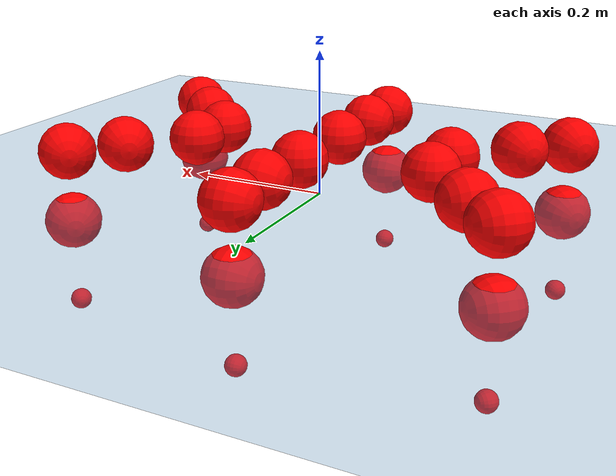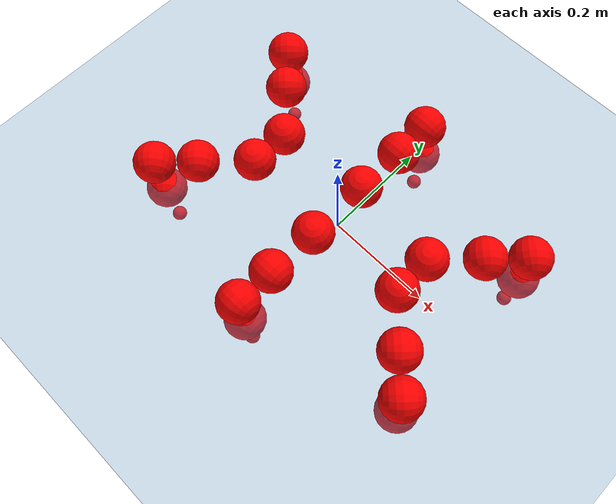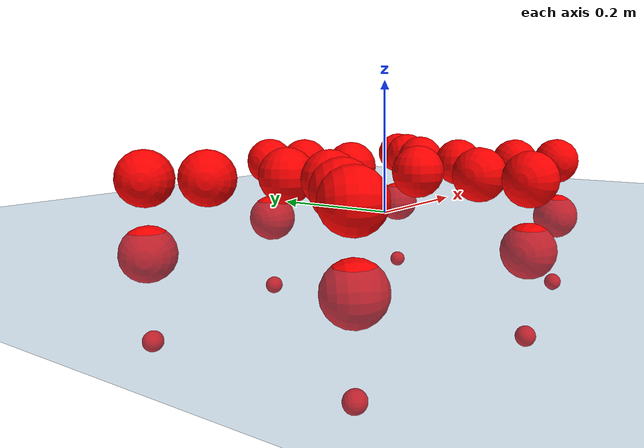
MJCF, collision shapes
<mujoco model="Golem">
  <compiler angle="radian" assetdir="assets" balanceinertia="true" inertiafromgeom="false"/>

  <option timestep="0.005" density="1.2" viscosity="2e-05"/>

  <size nkey="1"/>

  <visual>
    <quality shadowsize="8192"/>
    <map shadowclip="0.5"/>
  </visual>

  <default>
    <default class="/">
      <joint armature="0.01" damping="0.01" frictionloss="0.01"/>
      <geom contype="0" conaffinity="0" group="1" solref="-1000 -80"/>
      <site size="0.01 0.005 0.005" group="5"/>
      <general forcelimited="true" biastype="affine" gainprm="25" biasprm="0 -25 -0.5"/>
      <default class="visual">
        <geom type="mesh" group="2"/>
      </default>
      <default class="collision">
        <geom group="3"/>
      </default>
      <default class="foot">
        <geom size="0.01 0 0" condim="6" group="4" priority="1" solimp="0.015 1 0.01"/>
      </default>
      <default class="reward_collision_sphere">
        <geom group="5" rgba="1 0 0 1"/>
      </default>
    </default>
  </default>

  <asset>
    <texture type="skybox" colorspace="auto" name="//unnamed_texture_0" builtin="gradient" rgb1="0.95 0.95 0.95" rgb2="0.95 0.95 0.95" width="100" height="600"/>
    <texture type="2d" colorspace="auto" name="texplane" builtin="checker" rgb1="0.345 0.575 0.748" rgb2="0.345 0.575 0.748" markrgb="1 1 1" width="512" height="512"/>
    <material name="MatPlane" class="/" texture="texplane" texuniform="true" texrepeat="2 2" specular="0.9"/>
    <mesh name="body" class="/" file="body.stl" scale="0.001 0.001 0.001"/>
    <mesh name="coxa" class="/" file="coxa.stl" scale="0.001 0.001 0.001"/>
    <mesh name="femur" class="/" file="femur.stl" scale="0.001 0.001 0.001"/>
    <mesh name="tibia" class="/" file="tibia.stl" scale="0.001 0.001 0.001"/>
    <mesh name="tarsus" class="/" file="tarsus.stl" scale="0.001 0.001 0.001"/>
  </asset>

  <worldbody>
    <geom name="floor" class="/" size="100 100 0.125" type="plane" group="0" material="MatPlane"/>
    <light name="toplight_shadow" class="/" pos="0 0 5" dir="0.0990148 0.0990148 -0.990148" type="directional" ambient="0.04 0.04 0.04" diffuse="0.55 0.55 0.55" specular="0.12 0.12 0.12"/>
    <light name="toplight_fill" class="/" pos="0 0 5" dir="0.0990148 0.0990148 -0.990148" type="directional" castshadow="false" ambient="0.04 0.04 0.04" diffuse="0.3 0.3 0.3" specular="0.08 0.08 0.08"/>
    <body name="trunk" pos="-0.000856816 0.00206235 0.0002426" quat="1 -3.48196e-05 -8.23416e-06 1.04113e-05">
      <inertial pos="0.000853473 -8.48621e-05 -0.00539063" quat="0.999997 0.00110257 0.00185346 -0.000955086" mass="3.44947" diaginertia="0.0178105 0.0019949 0.0128286"/>
      <joint name="//unnamed_joint_0" type="free"/>
      <geom name="//unnamed_geom_1" class="/" pos="0 0 0.0673923" quat="1 0 0 0" type="mesh" rgba="0.9 0.9 0.9 1" mesh="body"/>
      <site name="imu" class="/" pos="0.144618 -0.00286658 0.104179" size="0.00964052"/>
      <camera name="track" class="/" pos="0 -1.44136 0" quat="0.707107 0.707107 0 0" mode="trackcom"/>
      <camera name="ego_camera" class="/" pos="0.145401 0 0.105301" quat="-0.5 -0.5 0.5 0.5"/>
      <body name="coxa_RR" pos="-0.198985 -0.0589147 0.0700141" quat="0.38323 -0.000348343 0.000453735 -0.923653">
        <inertial pos="5.90311e-05 -0.00235851 0.00284036" quat="1 5.35676e-05 4.45658e-05 0.000983067" mass="0.182626" diaginertia="0.0175615 0.00196641 0.0129169"/>
        <joint name="coxa_joint_RR" class="/" pos="0 0 0" axis="-9.72163e-05 -0.00442554 -0.99999" range="-3.11364 3.1388" armature="0.00976037" damping="0.0108776" frictionloss="0.00974057"/>
        <geom name="//unnamed_geom_2" class="/" type="mesh" rgba="0.2 0.2 0.2 1" mesh="coxa"/>
        <geom name="//unnamed_geom_3" class="reward_collision_sphere" size="0.0385621" pos="-0.0335542 0 0"/>
        <body name="femur_RR" pos="0.0689791 0.000725005 -0.00118532" quat="0.499556 -0.500482 0.500244 0.499717">
          <inertial pos="-0.00149598 0.000365705 0.000875386" quat="1 0.000450859 6.0139e-05 -0.000300305" mass="0.180529" diaginertia="0.0176571 0.00197308 0.0131082"/>
          <joint name="femur_joint_RR" class="/" pos="0 0 0" axis="-0.00206225 -0.00245106 -0.999995" range="-3.15232 3.14129" armature="0.00919903" damping="0.00538875" frictionloss="0.00971507"/>
          <geom name="//unnamed_geom_4" class="/" type="mesh" rgba="0.9 0.9 0.9 1" mesh="femur"/>
          <geom name="//unnamed_geom_5" class="reward_collision_sphere" size="0.0385621"/>
          <body name="tibia_RR" pos="0.00115704 -0.0786672 0.000561435" quat="4.58025e-05 1 3.61692e-05 -4.37843e-06">
            <inertial pos="-0.000519493 1.53267e-05 -0.000926422" quat="1 -2.04732e-05 7.71887e-05 7.58688e-05" mass="0.175949" diaginertia="0.0174558 0.00197336 0.0133174"/>
            <joint name="tibia_joint_RR" class="/" pos="0 0 0" axis="0.0046917 0.00202706 0.999987" range="-3.13093 3.0888" armature="0.00993041" damping="0.0120308" frictionloss="0.00949504"/>
            <geom name="//unnamed_geom_6" class="/" type="mesh" rgba="0.2 0.2 0.2 1" mesh="tibia"/>
            <geom name="//unnamed_geom_7" class="reward_collision_sphere" size="0.0385621"/>
            <body name="tarsus_RR" pos="0.0985143 -0.00154282 -0.00110795" quat="1 -1.95915e-05 -2.20598e-05 -2.32347e-05">
              <inertial pos="0.0699342 0.00311271 -0.00173205" quat="0.498387 0.501066 0.500421 0.500122" mass="0.184665" diaginertia="0.0179165 0.00203639 0.013322"/>
              <joint name="tarsus_joint_RR" class="/" pos="0 0 0" axis="-0.00413273 -0.00129864 0.999991" range="-3.09119 3.13141" armature="0.00918357" damping="0.0391269" frictionloss="0.00954252"/>
              <geom name="//unnamed_geom_8" class="/" type="mesh" rgba="0.9 0.9 0.9 1" mesh="tarsus"/>
              <geom name="foot_1" class="foot" size="0.00926143" pos="0.125269 0 0" quat="0 -0.707107 0 0.707107"/>
              <geom name="//unnamed_geom_10" class="reward_collision_sphere" size="0.0385621"/>
              <geom name="//unnamed_geom_11" class="reward_collision_sphere" size="0.0144608" pos="0.120236 0 0"/>
              <site name="foot_1" class="foot" pos="0.125269 0 0" quat="0 -0.707107 0 0.707107" size="0.00964052"/>
            </body>
          </body>
        </body>
      </body>
      <body name="coxa_RM" pos="-0.000316261 -0.0953611 0.0661827" quat="0.707018 -8.79186e-05 5.63719e-05 -0.707196">
        <inertial pos="0.000255785 -0.000303027 -0.000744907" quat="0.999998 0.00152052 0.000389071 0.000795733" mass="0.175611" diaginertia="0.017285 0.00190908 0.0127803"/>
        <joint name="coxa_joint_RM" class="/" pos="0 0 0" axis="0.00115616 -0.00402505 -0.999991" range="-3.12336 3.15878" armature="0.00981387" damping="0.00628655" frictionloss="0.00844564"/>
        <geom name="//unnamed_geom_12" class="/" type="mesh" rgba="0.2 0.2 0.2 1" mesh="coxa"/>
        <geom name="//unnamed_geom_13" class="reward_collision_sphere" size="0.0385621" pos="-0.0335542 0 0"/>
        <body name="femur_RM" pos="0.0662825 -0.00045652 0.00135139" quat="0.499928 -0.50017 0.500061 0.499841">
          <inertial pos="0.000315213 -0.000418018 0.00124118" quat="0.999989 0.00401128 -0.00137176 -0.00185629" mass="0.177548" diaginertia="0.0169901 0.00196213 0.0129442"/>
          <joint name="femur_joint_RM" class="/" pos="0 0 0" axis="-0.00486308 0.00167039 -0.999987" range="-3.15811 3.14224" armature="0.00952768" damping="0" frictionloss="0.00942984"/>
          <geom name="//unnamed_geom_14" class="/" type="mesh" rgba="0.9 0.9 0.9 1" mesh="femur"/>
          <geom name="//unnamed_geom_15" class="reward_collision_sphere" size="0.0385621"/>
          <body name="tibia_RM" pos="0.00181245 -0.0751314 -0.000846952" quat="9.23942e-05 1 0.000172138 4.23688e-06">
            <inertial pos="-0.00240734 -0.00258517 -0.000979444" quat="0.999928 -0.0111816 -0.00293112 0.00333692" mass="0.178491" diaginertia="0.0173912 0.00193927 0.0125483"/>
            <joint name="tibia_joint_RM" class="/" pos="0 0 0" axis="-0.000787664 -0.000540289 1" range="-3.12824 3.13036" armature="0.00951287" damping="0.017844" frictionloss="0.00971346"/>
            <geom name="//unnamed_geom_16" class="/" type="mesh" rgba="0.2 0.2 0.2 1" mesh="tibia"/>
            <geom name="//unnamed_geom_17" class="reward_collision_sphere" size="0.0385621"/>
            <body name="tarsus_RM" pos="0.0974128 7.56517e-05 -0.000490865" quat="1 -0.000315289 4.66935e-05 -0.000247579">
              <inertial pos="0.0667206 0.000773089 0.000692393" quat="0.50114 0.500314 0.49935 0.499193" mass="0.180511" diaginertia="0.017465 0.00197085 0.0130115"/>
              <joint name="tarsus_joint_RM" class="/" pos="0 0 0" axis="0.000851006 0.00279001 0.999996" range="-3.13732 3.13034" armature="0.00853337" damping="0.00204505" frictionloss="0.00971788"/>
              <geom name="//unnamed_geom_18" class="/" type="mesh" rgba="0.9 0.9 0.9 1" mesh="tarsus"/>
              <geom name="foot_2" class="foot" size="0.00926033" pos="0.125269 0 0" quat="0 -0.707107 0 0.707107"/>
              <geom name="//unnamed_geom_20" class="reward_collision_sphere" size="0.0385621"/>
              <geom name="//unnamed_geom_21" class="reward_collision_sphere" size="0.0144608" pos="0.120236 0 0"/>
              <site name="foot_2" class="foot" pos="0.125269 0 0" quat="0 -0.707107 0 0.707107" size="0.00964052"/>
            </body>
          </body>
        </body>
      </body>
      <body name="coxa_RF" pos="0.198226 -0.0613378 0.0664199" quat="0.923895 0.00024204 -0.000481397 -0.382646">
        <inertial pos="0.00202659 -0.000153762 0.000474532" quat="1 0.000174965 0.000196731 -8.86988e-05" mass="0.179545" diaginertia="0.0179957 0.00192464 0.0126203"/>
        <joint name="coxa_joint_RF" class="/" pos="0 0 0" axis="0.000625343 -0.00345947 -0.999994" range="-3.14554 3.13558" armature="0.00982254" damping="0.00911577" frictionloss="0.00944971"/>
        <geom name="//unnamed_geom_22" class="/" type="mesh" rgba="0.2 0.2 0.2 1" mesh="coxa"/>
        <geom name="//unnamed_geom_23" class="reward_collision_sphere" size="0.0385621" pos="-0.0335542 0 0"/>
        <body name="femur_RF" pos="0.0683028 -0.0010979 -0.00122745" quat="0.499896 -0.500173 0.499946 0.499985">
          <inertial pos="-0.000526572 0.000492354 -0.00125653" quat="0.999987 -0.000952345 -0.00377338 -0.00336706" mass="0.177249" diaginertia="0.0176454 0.00200445 0.0128272"/>
          <joint name="femur_joint_RF" class="/" pos="0 0 0" axis="0.000263329 -0.000828602 -1" range="-3.10239 3.14458" armature="0.0100366" damping="0" frictionloss="0.00919191"/>
          <geom name="//unnamed_geom_24" class="/" type="mesh" rgba="0.9 0.9 0.9 1" mesh="femur"/>
          <geom name="//unnamed_geom_25" class="reward_collision_sphere" size="0.0385621"/>
          <body name="tibia_RF" pos="0.000343402 -0.0770873 -0.000460803" quat="1.72575e-07 1 9.17292e-06 -8.83242e-06">
            <inertial pos="-0.00100764 0.000939287 0.000539271" quat="0.999987 0.00223809 0.00213509 0.00413261" mass="0.178808" diaginertia="0.0179808 0.00193285 0.0131235"/>
            <joint name="tibia_joint_RF" class="/" pos="0 0 0" axis="-0.00092502 0.00159463 0.999998" range="-3.13273 3.15426" armature="0.00934104" damping="0.0104452" frictionloss="0.00892088"/>
            <geom name="//unnamed_geom_26" class="/" type="mesh" rgba="0.2 0.2 0.2 1" mesh="tibia"/>
            <geom name="//unnamed_geom_27" class="reward_collision_sphere" size="0.0385621"/>
            <body name="tarsus_RF" pos="0.0976128 0.00159455 0.00156926" quat="0.999999 0.000415772 -0.000414232 -0.00100283">
              <inertial pos="0.0663436 -0.00222246 0.000879156" quat="0.497739 0.49172 0.508823 0.501564" mass="0.174753" diaginertia="0.0178503 0.00187143 0.0128931"/>
              <joint name="tarsus_joint_RF" class="/" pos="0 0 0" axis="0.00713418 -0.00144895 0.999974" range="-3.09435 3.13287" armature="0.0108067" damping="0.000489079" frictionloss="0.00970826"/>
              <geom name="//unnamed_geom_28" class="/" type="mesh" rgba="0.9 0.9 0.9 1" mesh="tarsus"/>
              <geom name="foot_3" class="foot" size="0.0101155" pos="0.125269 0 0" quat="0 -0.707107 0 0.707107"/>
              <geom name="//unnamed_geom_30" class="reward_collision_sphere" size="0.0385621"/>
              <geom name="//unnamed_geom_31" class="reward_collision_sphere" size="0.0144608" pos="0.120236 0 0"/>
              <site name="foot_3" class="foot" pos="0.125269 0 0" quat="0 -0.707107 0 0.707107" size="0.00964052"/>
            </body>
          </body>
        </body>
      </body>
      <body name="coxa_LR" pos="-0.199209 0.0623842 0.0698067" quat="0.383205 0.000105247 -0.000199137 0.923663">
        <inertial pos="0.00119763 -0.00269162 -0.000578539" quat="0.999974 -0.000315068 0.00249139 0.00679297" mass="0.173176" diaginertia="0.0169207 0.00193918 0.0126022"/>
        <joint name="coxa_joint_LR" class="/" pos="0 0 0" axis="0.00180259 0.000508607 -0.999998" range="-3.12755 3.18434" armature="0.00862162" damping="0.00818456" frictionloss="0.00977774"/>
        <geom name="//unnamed_geom_32" class="/" type="mesh" rgba="0.2 0.2 0.2 1" mesh="coxa"/>
        <geom name="//unnamed_geom_33" class="reward_collision_sphere" size="0.0385621" pos="-0.0335542 0 0"/>
        <body name="femur_LR" pos="0.0701387 -0.00194897 -0.0014438" quat="0.500228 -0.499906 0.500242 0.499624">
          <inertial pos="-0.00102255 -0.000427103 -0.00106777" quat="0.999935 -0.00126757 0.0110672 0.00251264" mass="0.179492" diaginertia="0.0176976 0.00195205 0.0134068"/>
          <joint name="femur_joint_LR" class="/" pos="0 0 0" axis="7.51208e-05 2.18396e-05 1" range="-3.09012 3.10976" armature="0.00970987" damping="0" frictionloss="0.00957862"/>
          <geom name="//unnamed_geom_34" class="/" type="mesh" rgba="0.9 0.9 0.9 1" mesh="femur"/>
          <geom name="//unnamed_geom_35" class="reward_collision_sphere" size="0.0385621"/>
          <body name="tibia_LR" pos="-0.00110653 -0.0794081 -0.00247977" quat="-9.65611e-05 1 -1.0577e-05 -1.78927e-05">
            <inertial pos="-0.000279311 -0.00211922 0.00135528" quat="0.999999 4.83272e-05 -0.000194991 0.00103325" mass="0.179442" diaginertia="0.0176937 0.00193535 0.0130071"/>
            <joint name="tibia_joint_LR" class="/" pos="0 0 0" axis="-0.0010293 0.0013725 -0.999999" range="-3.16942 3.13977" armature="0.00957012" damping="0" frictionloss="0.00982831"/>
            <geom name="//unnamed_geom_36" class="/" type="mesh" rgba="0.2 0.2 0.2 1" mesh="tibia"/>
            <geom name="//unnamed_geom_37" class="reward_collision_sphere" size="0.0385621"/>
            <body name="tarsus_LR" pos="0.100224 0.000514437 2.34179e-05" quat="1 7.91538e-05 0.000407238 -0.000797793">
              <inertial pos="0.0692547 0.000353154 4.23834e-05" quat="0.49896 0.501609 0.501111 0.498313" mass="0.180105" diaginertia="0.0173325 0.00193299 0.0127786"/>
              <joint name="tarsus_joint_LR" class="/" pos="0 0 0" axis="2.58153e-05 0.000279619 -1" range="-3.1769 3.13753" armature="0.009641" damping="0.0296382" frictionloss="0.00865991"/>
              <geom name="//unnamed_geom_38" class="/" type="mesh" rgba="0.9 0.9 0.9 1" mesh="tarsus"/>
              <geom name="foot_4" class="foot" size="0.00936351" pos="0.125269 0 0" quat="0.707107 0 -0.707107 0"/>
              <geom name="//unnamed_geom_40" class="reward_collision_sphere" size="0.0385621"/>
              <geom name="//unnamed_geom_41" class="reward_collision_sphere" size="0.0144608" pos="0.120236 0 0"/>
              <site name="foot_4" class="foot" pos="0.125269 0 0" quat="0.707107 0 -0.707107 0" size="0.00964052"/>
            </body>
          </body>
        </body>
      </body>
      <body name="coxa_LM" pos="-0.000919912 0.093432 0.0672968" quat="0.707171 -1.54275e-05 -0.000107013 0.707043">
        <inertial pos="-0.00126494 0.000964489 -0.000383862" quat="1 1.70916e-07 -0.0002124 0.000106879" mass="0.180345" diaginertia="0.0171963 0.0018952 0.0133457"/>
        <joint name="coxa_joint_LM" class="/" pos="0 0 0" axis="-0.000366217 0.00405565 -0.999992" stiffness="0.00445981" range="-3.13715 3.13546" armature="0.0107299" damping="0.00168293" frictionloss="0.00937884"/>
        <geom name="//unnamed_geom_42" class="/" type="mesh" rgba="0.2 0.2 0.2 1" mesh="coxa"/>
        <geom name="//unnamed_geom_43" class="reward_collision_sphere" size="0.0385621" pos="-0.0335542 0 0"/>
        <body name="femur_LM" pos="0.062769 -0.00153321 0.00138616" quat="0.499983 -0.499995 0.500033 0.499988">
          <inertial pos="0.00146116 -0.000510481 0.00198896" quat="1 3.62344e-05 0.000287806 -0.000417195" mass="0.179269" diaginertia="0.0173877 0.00194207 0.0130826"/>
          <joint name="femur_joint_LM" class="/" pos="0 0 0" axis="0.00700726 0.00247228 0.999972" range="-3.13822 3.11266" armature="0.00933628" damping="0.00411721" frictionloss="0.00998487"/>
          <geom name="//unnamed_geom_44" class="/" type="mesh" rgba="0.9 0.9 0.9 1" mesh="femur"/>
          <geom name="//unnamed_geom_45" class="reward_collision_sphere" size="0.0385621"/>
          <body name="tibia_LM" pos="0.00161301 -0.0752302 0.00218414" quat="1.26837e-05 1 8.54332e-05 -0.000257661">
            <inertial pos="-6.07083e-05 -0.00259751 0.00251618" quat="0.999923 -0.0117209 -0.00391686 -0.00127175" mass="0.174568" diaginertia="0.0176383 0.00190737 0.0127045"/>
            <joint name="tibia_joint_LM" class="/" pos="0 0 0" axis="0.00534558 -0.00184264 -0.999984" range="-3.14054 3.09779" armature="0.00921416" damping="0.00304034" frictionloss="0.00969578"/>
            <geom name="//unnamed_geom_46" class="/" type="mesh" rgba="0.2 0.2 0.2 1" mesh="tibia"/>
            <geom name="//unnamed_geom_47" class="reward_collision_sphere" size="0.0385621"/>
            <body name="tarsus_LM" pos="0.0978066 -0.000511438 0.00123844" quat="1 -0.000422861 -6.04876e-05 -0.00025598">
              <inertial pos="0.067265 0.000224097 -0.00172701" quat="0.502093 0.503464 0.504381 0.489925" mass="0.184454" diaginertia="0.017671 0.00192287 0.012912"/>
              <joint name="tarsus_joint_LM" class="/" pos="0 0 0" axis="0.00617093 -0.00562565 -0.999965" range="-3.14778 3.09944" armature="0.00999084" damping="0" frictionloss="0.00958313"/>
              <geom name="//unnamed_geom_48" class="/" type="mesh" rgba="0.9 0.9 0.9 1" mesh="tarsus"/>
              <geom name="foot_5" class="foot" size="0.00957268" pos="0.125269 0 0" quat="0.707107 0 -0.707107 0"/>
              <geom name="//unnamed_geom_50" class="reward_collision_sphere" size="0.0385621"/>
              <geom name="//unnamed_geom_51" class="reward_collision_sphere" size="0.0144608" pos="0.120236 0 0"/>
              <site name="foot_5" class="foot" pos="0.125269 0 0" quat="0.707107 0 -0.707107 0" size="0.00964052"/>
            </body>
          </body>
        </body>
      </body>
      <body name="coxa_LF" pos="0.197834 0.0608329 0.0689949" quat="0.924192 -0.000215043 0.000620193 0.381929">
        <inertial pos="-0.000909802 0.00101867 -0.000666208" quat="0.999923 -0.00674264 0.00724141 0.00747171" mass="0.183696" diaginertia="0.0175432 0.00198984 0.0125057"/>
        <joint name="coxa_joint_LF" class="/" pos="0 0 0" axis="0.000632698 3.25024e-05 -1" range="-3.13852 3.14226" armature="0.00983572" damping="0.00355989" frictionloss="0.00939947"/>
        <geom name="//unnamed_geom_52" class="/" type="mesh" rgba="0.2 0.2 0.2 1" mesh="coxa"/>
        <geom name="//unnamed_geom_53" class="reward_collision_sphere" size="0.0385621" pos="-0.0335542 0 0"/>
        <body name="femur_LF" pos="0.065704 0.000563768 -3.34495e-05" quat="0.500155 -0.500134 0.499766 0.499945">
          <inertial pos="0.00200761 0.000897654 0.00223739" quat="0.999988 0.0042737 -0.00227312 -0.000890245" mass="0.176444" diaginertia="0.0170064 0.00193949 0.0124714"/>
          <joint name="femur_joint_LF" class="/" pos="0 0 0" axis="0.00131812 -3.51158e-05 0.999999" range="-3.13639 3.18868" armature="0.0100951" damping="0" frictionloss="0.00988669"/>
          <geom name="//unnamed_geom_54" class="/" type="mesh" rgba="0.9 0.9 0.9 1" mesh="femur"/>
          <geom name="//unnamed_geom_55" class="reward_collision_sphere" size="0.0385621"/>
          <body name="tibia_LF" pos="0.00244626 -0.0782905 0.000370375" quat="-6.78439e-05 1 0.000288024 -0.000232312">
            <inertial pos="0.000302417 -0.000966127 -0.000136382" quat="1 0.000111803 0.000232284 0.000211394" mass="0.179299" diaginertia="0.0174261 0.00195495 0.012999"/>
            <joint name="tibia_joint_LF" class="/" pos="0 0 0" axis="-0.0039583 0.00322263 -0.999987" stiffness="0.000795982" range="-3.12163 3.15491" armature="0.00860037" damping="0" frictionloss="0.00914164"/>
            <geom name="//unnamed_geom_56" class="/" type="mesh" rgba="0.2 0.2 0.2 1" mesh="tibia"/>
            <geom name="//unnamed_geom_57" class="reward_collision_sphere" size="0.0385621"/>
            <body name="tarsus_LF" pos="0.099368 0.00051714 -0.000330962" quat="1 4.91063e-05 -0.000151115 0.00032896">
              <inertial pos="0.0662124 -0.000724479 0.000558748" quat="0.500014 0.500182 0.499742 0.500061" mass="0.177008" diaginertia="0.0176927 0.0019556 0.0130296"/>
              <joint name="tarsus_joint_LF" class="/" pos="0 0 0" axis="-0.00106186 -0.000688219 -0.999999" stiffness="0.0203077" range="-3.18168 3.18325" armature="0.0096052" damping="0" frictionloss="0.00937748"/>
              <geom name="//unnamed_geom_58" class="/" type="mesh" rgba="0.9 0.9 0.9 1" mesh="tarsus"/>
              <geom name="foot_6" class="foot" size="0.00937196" pos="0.125269 0 0" quat="0.707107 0 -0.707107 0"/>
              <geom name="//unnamed_geom_60" class="reward_collision_sphere" size="0.0385621"/>
              <geom name="//unnamed_geom_61" class="reward_collision_sphere" size="0.0144608" pos="0.120236 0 0"/>
              <site name="foot_6" class="foot" pos="0.125269 0 0" quat="0.707107 0 -0.707107 0" size="0.00964052"/>
            </body>
          </body>
        </body>
      </body>
    </body>
  </worldbody>

  <contact>
    <pair class="/" geom1="floor" geom2="foot_1" name="//unnamed_contact_0"/>
    <pair class="/" geom1="floor" geom2="foot_2" name="//unnamed_contact_1"/>
    <pair class="/" geom1="floor" geom2="foot_3" name="//unnamed_contact_2"/>
    <pair class="/" geom1="floor" geom2="foot_4" name="//unnamed_contact_3"/>
    <pair class="/" geom1="floor" geom2="foot_5" name="//unnamed_contact_4"/>
    <pair class="/" geom1="floor" geom2="foot_6" name="//unnamed_contact_5"/>
  </contact>

  <actuator>
    <general name="coxa_joint_RR" class="/" joint="coxa_joint_RR" forcerange="-6.84565 6.84565" gainprm="23.0666" biasprm="0 -23.0666 -0.508177"/>
    <general name="femur_joint_RR" class="/" joint="femur_joint_RR" forcerange="-7.11317 7.11317" gainprm="23.0666" biasprm="0 -23.0666 -0.508177"/>
    <general name="tibia_joint_RR" class="/" joint="tibia_joint_RR" forcerange="-6.4163 6.4163" gainprm="23.0666" biasprm="0 -23.0666 -0.508177"/>
    <general name="tarsus_joint_RR" class="/" joint="tarsus_joint_RR" forcerange="-6.90335 6.90335" gainprm="23.0666" biasprm="0 -23.0666 -0.508177"/>
    <general name="coxa_joint_RM" class="/" joint="coxa_joint_RM" forcerange="-7.03653 7.03653" gainprm="23.0666" biasprm="0 -23.0666 -0.508177"/>
    <general name="femur_joint_RM" class="/" joint="femur_joint_RM" forcerange="-7.17622 7.17622" gainprm="23.0666" biasprm="0 -23.0666 -0.508177"/>
    <general name="tibia_joint_RM" class="/" joint="tibia_joint_RM" forcerange="-6.38348 6.38348" gainprm="23.0666" biasprm="0 -23.0666 -0.508177"/>
    <general name="tarsus_joint_RM" class="/" joint="tarsus_joint_RM" forcerange="-7.31147 7.31147" gainprm="23.0666" biasprm="0 -23.0666 -0.508177"/>
    <general name="coxa_joint_RF" class="/" joint="coxa_joint_RF" forcerange="-6.89628 6.89628" gainprm="23.0666" biasprm="0 -23.0666 -0.508177"/>
    <general name="femur_joint_RF" class="/" joint="femur_joint_RF" forcerange="-7.6944 7.6944" gainprm="23.0666" biasprm="0 -23.0666 -0.508177"/>
    <general name="tibia_joint_RF" class="/" joint="tibia_joint_RF" forcerange="-6.96358 6.96358" gainprm="23.0666" biasprm="0 -23.0666 -0.508177"/>
    <general name="tarsus_joint_RF" class="/" joint="tarsus_joint_RF" forcerange="-7.69035 7.69035" gainprm="23.0666" biasprm="0 -23.0666 -0.508177"/>
    <general name="coxa_joint_LR" class="/" joint="coxa_joint_LR" forcerange="-6.59559 6.59559" gainprm="23.0666" biasprm="0 -23.0666 -0.508177"/>
    <general name="femur_joint_LR" class="/" joint="femur_joint_LR" forcerange="-6.80024 6.80024" gainprm="23.0666" biasprm="0 -23.0666 -0.508177"/>
    <general name="tibia_joint_LR" class="/" joint="tibia_joint_LR" forcerange="-7.09225 7.09225" gainprm="23.0666" biasprm="0 -23.0666 -0.508177"/>
    <general name="tarsus_joint_LR" class="/" joint="tarsus_joint_LR" forcerange="-7.12449 7.12449" gainprm="23.0666" biasprm="0 -23.0666 -0.508177"/>
    <general name="coxa_joint_LM" class="/" joint="coxa_joint_LM" forcerange="-6.92285 6.92285" gainprm="23.0666" biasprm="0 -23.0666 -0.508177"/>
    <general name="femur_joint_LM" class="/" joint="femur_joint_LM" forcerange="-7.02555 7.02555" gainprm="23.0666" biasprm="0 -23.0666 -0.508177"/>
    <general name="tibia_joint_LM" class="/" joint="tibia_joint_LM" forcerange="-6.45238 6.45238" gainprm="23.0666" biasprm="0 -23.0666 -0.508177"/>
    <general name="tarsus_joint_LM" class="/" joint="tarsus_joint_LM" forcerange="-6.7977 6.7977" gainprm="23.0666" biasprm="0 -23.0666 -0.508177"/>
    <general name="coxa_joint_LF" class="/" joint="coxa_joint_LF" forcerange="-6.77883 6.77883" gainprm="23.0666" biasprm="0 -23.0666 -0.508177"/>
    <general name="femur_joint_LF" class="/" joint="femur_joint_LF" forcerange="-6.5572 6.5572" gainprm="23.0666" biasprm="0 -23.0666 -0.508177"/>
    <general name="tibia_joint_LF" class="/" joint="tibia_joint_LF" forcerange="-7.03312 7.03312" gainprm="23.0666" biasprm="0 -23.0666 -0.508177"/>
    <general name="tarsus_joint_LF" class="/" joint="tarsus_joint_LF" forcerange="-7.04324 7.04324" gainprm="23.0666" biasprm="0 -23.0666 -0.508177"/>
  </actuator>

  <sensor>
    <gyro site="imu" name="imu_angular_velocity"/>
    <velocimeter site="imu" name="imu_linear_velocity"/>
    <framelinvel objtype="site" objname="foot_1" name="foot_1_global_linear_velocity"/>
    <framelinvel objtype="site" objname="foot_2" name="foot_2_global_linear_velocity"/>
    <framelinvel objtype="site" objname="foot_3" name="foot_3_global_linear_velocity"/>
    <framelinvel objtype="site" objname="foot_4" name="foot_4_global_linear_velocity"/>
    <framelinvel objtype="site" objname="foot_5" name="foot_5_global_linear_velocity"/>
    <framelinvel objtype="site" objname="foot_6" name="foot_6_global_linear_velocity"/>
  </sensor>

  <keyframe>
    <key name="home" qpos="0 0 0.1457 1 0 0 0 0 0 0 0 0 0 0 0 0 0 0 0 0 0 0 0 0 0 0 0 0 0 0 0"/>
  </keyframe>
</mujoco>
